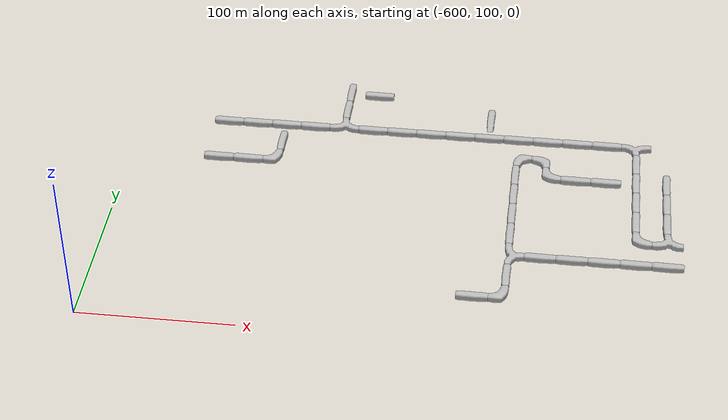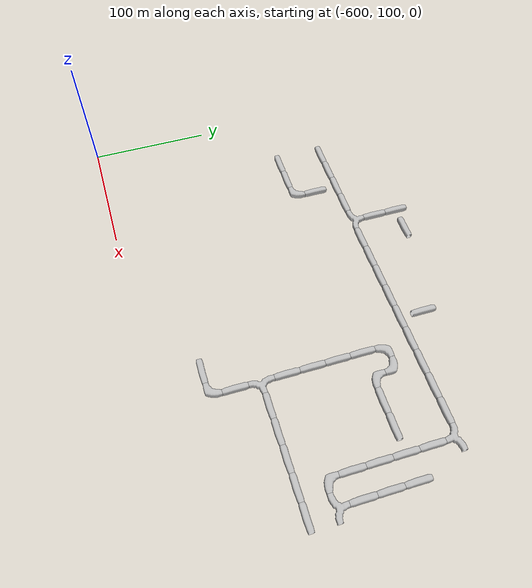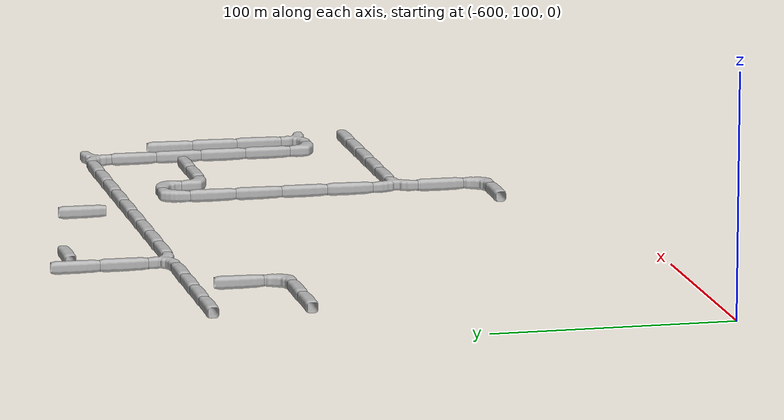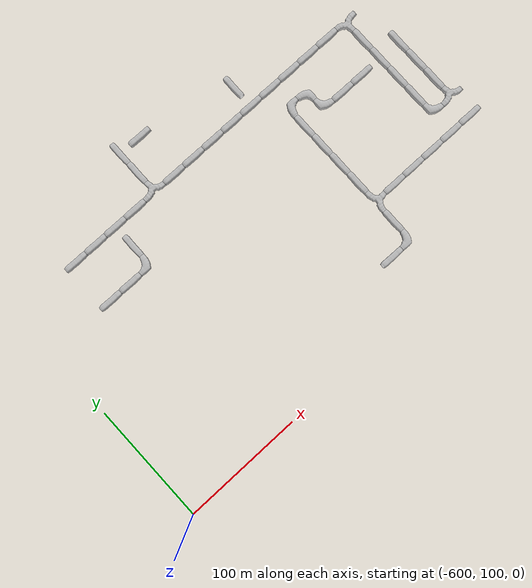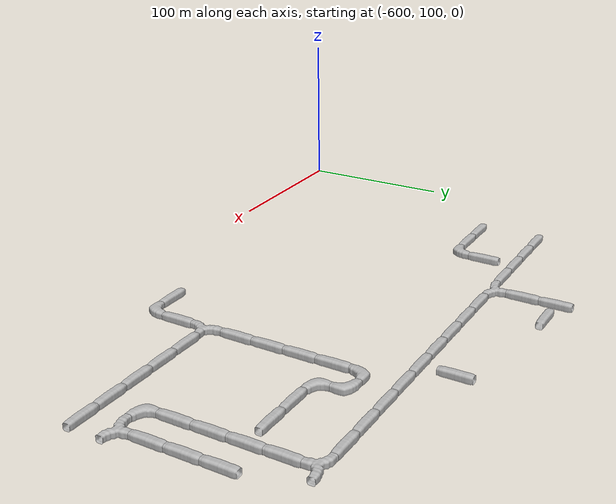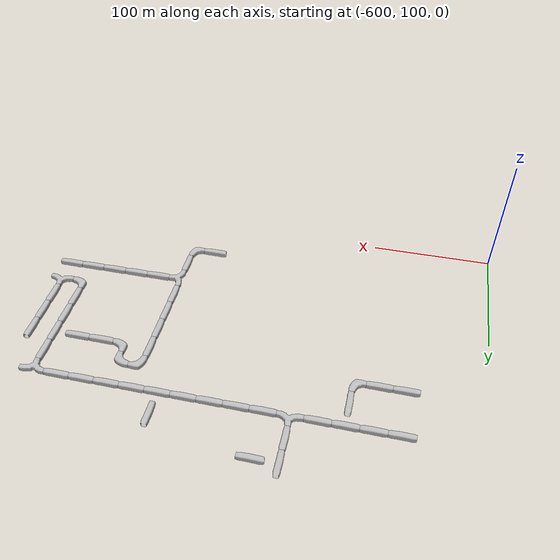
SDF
<sdf version="1.6">
 <world name="cave_16000">
  <include>
   <static>true</static>
   <name>cave_-12_9</name>
   <pose>-240 180 0 0 0 1.5707963267948966</pose>
   <uri>model://cave_straight_20m</uri>
  </include>
  <include>
   <static>true</static>
   <name>cave_-13_9</name>
   <pose>-260 180 0 0 0 1.5707963267948966</pose>
   <uri>model://cave_straight_20m</uri>
  </include>
  <include>
   <static>true</static>
   <name>cave_-14_9</name>
   <pose>-280 180 0 0 0 1.5707963267948966</pose>
   <uri>model://cave_straight_20m</uri>
  </include>
  <include>
   <static>true</static>
   <name>cave_-15_9</name>
   <pose>-300 180 0 0 0 1.5707963267948966</pose>
   <uri>model://cave_straight_20m</uri>
  </include>
  <include>
   <static>true</static>
   <name>cave_-16_9</name>
   <pose>-320 180 0 0 0 1.5707963267948966</pose>
   <uri>model://cave_straight_20m</uri>
  </include>
  <include>
   <static>true</static>
   <name>cave_-17_9</name>
   <pose>-340 180 0 0 0 -1.5707963267948966</pose>
   <uri>model://cave_3way_20m</uri>
  </include>
  <include>
   <static>true</static>
   <name>cave_-17_8</name>
   <pose>-340 160 0 0 0 0.0</pose>
   <uri>model://cave_straight_20m</uri>
  </include>
  <include>
   <static>true</static>
   <name>cave_-17_7</name>
   <pose>-340 140 0 0 0 1.5707963267948966</pose>
   <uri>model://cave_L_20m</uri>
  </include>
  <include>
   <static>true</static>
   <name>cave_-18_7</name>
   <pose>-360 140 0 0 0 1.5707963267948966</pose>
   <uri>model://cave_straight_20m</uri>
  </include>
  <include>
   <static>true</static>
   <name>cave_-17_10</name>
   <pose>-340 200 0 0 0 0.0</pose>
   <uri>model://cave_straight_20m</uri>
  </include>
  <include>
   <static>true</static>
   <name>cave_-17_11</name>
   <pose>-340 220 0 0 0 0.0</pose>
   <uri>model://cave_straight_20m</uri>
  </include>
  <include>
   <static>true</static>
   <name>cave_-17_12</name>
   <pose>-340 240 0 0 0 0.0</pose>
   <uri>model://cave_straight_20m</uri>
  </include>
  <include>
   <static>true</static>
   <name>cave_-17_13</name>
   <pose>-340 260 0 0 0 0.0</pose>
   <uri>model://cave_straight_20m</uri>
  </include>
  <include>
   <static>true</static>
   <name>cave_-17_14</name>
   <pose>-340 280 0 0 0 -1.5707963267948966</pose>
   <uri>model://cave_L_20m</uri>
  </include>
  <include>
   <static>true</static>
   <name>cave_-16_14</name>
   <pose>-320 280 0 0 0 3.141592653589793</pose>
   <uri>model://cave_L_20m</uri>
  </include>
  <include>
   <static>true</static>
   <name>cave_-16_13</name>
   <pose>-320 260 0 0 0 0.0</pose>
   <uri>model://cave_L_20m</uri>
  </include>
  <include>
   <static>true</static>
   <name>cave_-15_13</name>
   <pose>-300 260 0 0 0 1.5707963267948966</pose>
   <uri>model://cave_straight_20m</uri>
  </include>
  <include>
   <static>true</static>
   <name>cave_-14_13</name>
   <pose>-280 260 0 0 0 1.5707963267948966</pose>
   <uri>model://cave_straight_20m</uri>
  </include>
  <include>
   <static>true</static>
   <name>cave_-12_10</name>
   <pose>-240 200 0 0 0 0.0</pose>
   <uri>model://cave_3way_20m</uri>
  </include>
  <include>
   <static>true</static>
   <name>cave_-13_10</name>
   <pose>-260 200 0 0 0 0.0</pose>
   <uri>model://cave_L_20m</uri>
  </include>
  <include>
   <static>true</static>
   <name>cave_-13_11</name>
   <pose>-260 220 0 0 0 0.0</pose>
   <uri>model://cave_straight_20m</uri>
  </include>
  <include>
   <static>true</static>
   <name>cave_-13_12</name>
   <pose>-260 240 0 0 0 0.0</pose>
   <uri>model://cave_straight_20m</uri>
  </include>
  <include>
   <static>true</static>
   <name>cave_-13_13</name>
   <pose>-260 260 0 0 0 0.0</pose>
   <uri>model://cave_straight_20m</uri>
  </include>
  <include>
   <static>true</static>
   <name>cave_-13_14</name>
   <pose>-260 280 0 0 0 0.0</pose>
   <uri>model://cave_straight_20m</uri>
  </include>
  <include>
   <static>true</static>
   <name>cave_-13_15</name>
   <pose>-260 300 0 0 0 3.141592653589793</pose>
   <uri>model://cave_3way_20m</uri>
  </include>
  <include>
   <static>true</static>
   <name>cave_-14_15</name>
   <pose>-280 300 0 0 0 1.5707963267948966</pose>
   <uri>model://cave_straight_20m</uri>
  </include>
  <include>
   <static>true</static>
   <name>cave_-15_15</name>
   <pose>-300 300 0 0 0 1.5707963267948966</pose>
   <uri>model://cave_straight_20m</uri>
  </include>
  <include>
   <static>true</static>
   <name>cave_-16_15</name>
   <pose>-320 300 0 0 0 1.5707963267948966</pose>
   <uri>model://cave_straight_20m</uri>
  </include>
  <include>
   <static>true</static>
   <name>cave_-17_15</name>
   <pose>-340 300 0 0 0 1.5707963267948966</pose>
   <uri>model://cave_straight_20m</uri>
  </include>
  <include>
   <static>true</static>
   <name>cave_-18_15</name>
   <pose>-360 300 0 0 0 1.5707963267948966</pose>
   <uri>model://cave_straight_20m</uri>
  </include>
  <include>
   <static>true</static>
   <name>cave_-19_15</name>
   <pose>-380 300 0 0 0 1.5707963267948966</pose>
   <uri>model://cave_straight_20m</uri>
  </include>
  <include>
   <static>true</static>
   <name>cave_-20_15</name>
   <pose>-400 300 0 0 0 1.5707963267948966</pose>
   <uri>model://cave_straight_20m</uri>
  </include>
  <include>
   <static>true</static>
   <name>cave_-21_15</name>
   <pose>-420 300 0 0 0 1.5707963267948966</pose>
   <uri>model://cave_straight_20m</uri>
  </include>
  <include>
   <static>true</static>
   <name>cave_-22_15</name>
   <pose>-440 300 0 0 0 1.5707963267948966</pose>
   <uri>model://cave_straight_20m</uri>
  </include>
  <include>
   <static>true</static>
   <name>cave_-23_15</name>
   <pose>-460 300 0 0 0 0.0</pose>
   <uri>model://cave_3way_20m</uri>
  </include>
  <include>
   <static>true</static>
   <name>cave_-24_15</name>
   <pose>-480 300 0 0 0 1.5707963267948966</pose>
   <uri>model://cave_straight_20m</uri>
  </include>
  <include>
   <static>true</static>
   <name>cave_-25_15</name>
   <pose>-500 300 0 0 0 1.5707963267948966</pose>
   <uri>model://cave_straight_20m</uri>
  </include>
  <include>
   <static>true</static>
   <name>cave_-26_15</name>
   <pose>-520 300 0 0 0 1.5707963267948966</pose>
   <uri>model://cave_straight_20m</uri>
  </include>
  <include>
   <static>true</static>
   <name>cave_-27_15</name>
   <pose>-540 300 0 0 0 1.5707963267948966</pose>
   <uri>model://cave_straight_20m</uri>
  </include>
  <include>
   <static>true</static>
   <name>cave_-27_13</name>
   <pose>-540 260 0 0 0 1.5707963267948966</pose>
   <uri>model://cave_straight_20m</uri>
  </include>
  <include>
   <static>true</static>
   <name>cave_-26_13</name>
   <pose>-520 260 0 0 0 1.5707963267948966</pose>
   <uri>model://cave_straight_20m</uri>
  </include>
  <include>
   <static>true</static>
   <name>cave_-25_13</name>
   <pose>-500 260 0 0 0 1.5707963267948966</pose>
   <uri>model://cave_L_20m</uri>
  </include>
  <include>
   <static>true</static>
   <name>cave_-25_14</name>
   <pose>-500 280 0 0 0 0.0</pose>
   <uri>model://cave_straight_20m</uri>
  </include>
  <include>
   <static>true</static>
   <name>cave_-23_16</name>
   <pose>-460 320 0 0 0 0.0</pose>
   <uri>model://cave_straight_20m</uri>
  </include>
  <include>
   <static>true</static>
   <name>cave_-23_17</name>
   <pose>-460 340 0 0 0 0.0</pose>
   <uri>model://cave_straight_20m</uri>
  </include>
  <include>
   <static>true</static>
   <name>cave_-18_16</name>
   <pose>-360 320 0 0 0 0.0</pose>
   <uri>model://cave_straight_20m</uri>
  </include>
  <include>
   <static>true</static>
   <name>cave_-22_17</name>
   <pose>-440 340 0 0 0 1.5707963267948966</pose>
   <uri>model://cave_straight_20m</uri>
  </include>
  <include>
   <static>true</static>
   <name>cave_-12_11</name>
   <pose>-240 220 0 0 0 0.0</pose>
   <uri>model://cave_straight_20m</uri>
  </include>
  <include>
   <static>true</static>
   <name>cave_-12_12</name>
   <pose>-240 240 0 0 0 0.0</pose>
   <uri>model://cave_straight_20m</uri>
  </include>
  <include>
   <static>true</static>
   <name>cave_-12_13</name>
   <pose>-240 260 0 0 0 0.0</pose>
   <uri>model://cave_straight_20m</uri>
  </include>
 </world>
</sdf>
